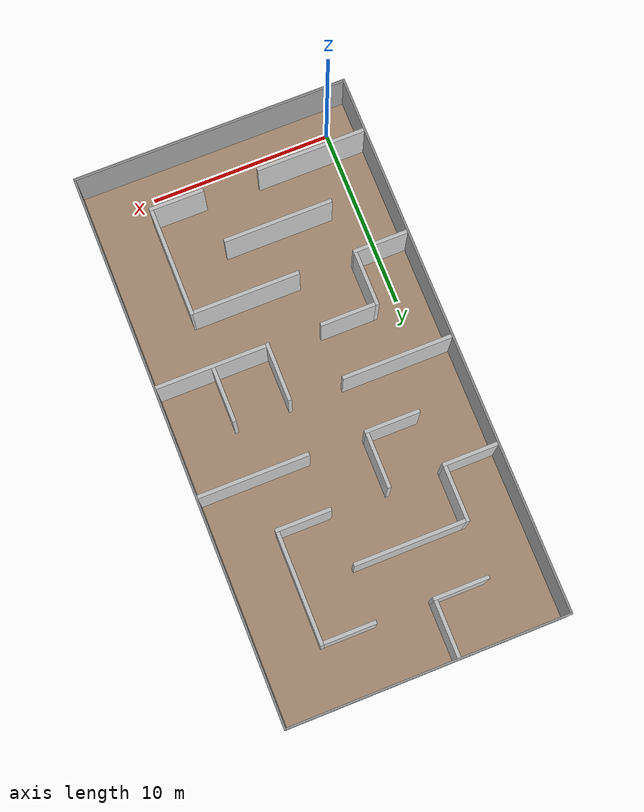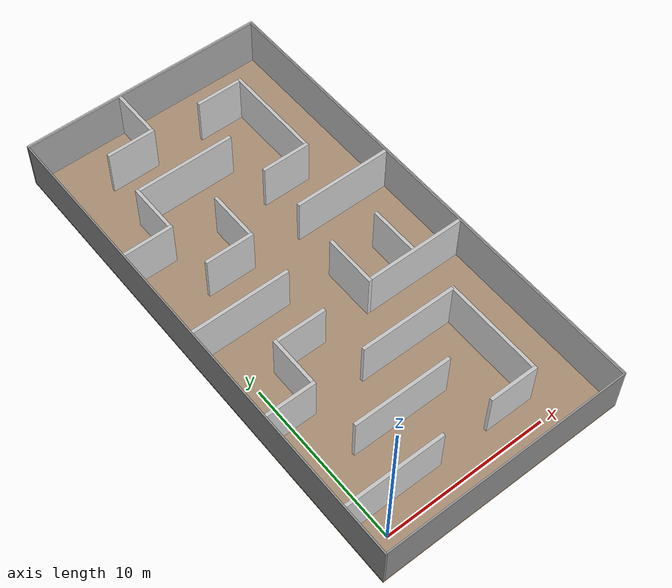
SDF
<?xml version="1.0" ?>
<sdf version="1.5">
  <world name="default">

    <include>
      <uri>model://sun</uri>
    </include>

    <physics name="default_physics" default="0" type="ode">
      <gravity>0 0 -9.8066</gravity>
      <ode>
        <solver>
          <type>quick</type>
          <iters>10</iters>
          <sor>1.3</sor>
          <use_dynamic_moi_rescaling>0</use_dynamic_moi_rescaling>
        </solver>
        <constraints>
          <cfm>0</cfm>
          <erp>0.2</erp>
          <contact_max_correcting_vel>100</contact_max_correcting_vel>
          <contact_surface_layer>0.001</contact_surface_layer>
        </constraints>
      </ode>
      <max_step_size>0.004</max_step_size>
      <real_time_factor>1</real_time_factor>
      <real_time_update_rate>250</real_time_update_rate>
      <magnetic_field>6.0e-6 2.3e-5 -4.2e-5</magnetic_field>
    </physics>

    <model name="box_1">
      <pose>6.05 -1.55 1.5  0 0 0</pose>
      <static>true</static>
      <link name="link">
        <collision name="collision">
          <geometry>
            <box>
              <size>15.1 0.10000000000000009 3.0 </size>
            </box>
          </geometry>
        </collision>
        <visual name="visual">
          <geometry>
            <box>
              <size>15.1 0.10000000000000009 3.0 </size>
            </box>
          </geometry>
          <material>
            <script>
              <name>Gazebo/Grey</name>
              <uri>file://media/materials/scripts/gazebo.material</uri>
            </script>
          </material>
        </visual>
      </link>
    </model>

    <model name="box_2">
      <pose>13.55 13.55 1.5  0 0 0</pose>
      <static>true</static>
      <link name="link">
        <collision name="collision">
          <geometry>
            <box>
              <size>0.09999999999999964 30.1 3.0 </size>
            </box>
          </geometry>
        </collision>
        <visual name="visual">
          <geometry>
            <box>
              <size>0.09999999999999964 30.1 3.0 </size>
            </box>
          </geometry>
          <material>
            <script>
              <name>Gazebo/Grey</name>
              <uri>file://media/materials/scripts/gazebo.material</uri>
            </script>
          </material>
        </visual>
      </link>
    </model>

    <model name="box_3">
      <pose>5.95 28.55 1.5  0 0 0</pose>
      <static>true</static>
      <link name="link">
        <collision name="collision">
          <geometry>
            <box>
              <size>15.1 0.10000000000000142 3.0 </size>
            </box>
          </geometry>
        </collision>
        <visual name="visual">
          <geometry>
            <box>
              <size>15.1 0.10000000000000142 3.0 </size>
            </box>
          </geometry>
          <material>
            <script>
              <name>Gazebo/Grey</name>
              <uri>file://media/materials/scripts/gazebo.material</uri>
            </script>
          </material>
        </visual>
      </link>
    </model>

    <model name="box_4">
      <pose>-1.55 13.45 1.5  0 0 0</pose>
      <static>true</static>
      <link name="link">
        <collision name="collision">
          <geometry>
            <box>
              <size>0.10000000000000009 30.1 3.0 </size>
            </box>
          </geometry>
        </collision>
        <visual name="visual">
          <geometry>
            <box>
              <size>0.10000000000000009 30.1 3.0 </size>
            </box>
          </geometry>
          <material>
            <script>
              <name>Gazebo/Grey</name>
              <uri>file://media/materials/scripts/gazebo.material</uri>
            </script>
          </material>
        </visual>
      </link>
    </model>

    <model name="box_5">
      <pose>6.0 13.5 -0.05  0 0 0</pose>
      <static>true</static>
      <link name="link">
        <collision name="collision">
          <geometry>
            <box>
              <size>15.2 30.200000000000003 0.1 </size>
            </box>
          </geometry>
        </collision>
        <visual name="visual">
          <geometry>
            <box>
              <size>15.2 30.200000000000003 0.1 </size>
            </box>
          </geometry>
          <material>
            <script>
              <name>Gazebo/WoodFloor</name>
              <uri>file://media/materials/scripts/gazebo.material</uri>
            </script>
          </material>
        </visual>
      </link>
    </model>

    <model name="box_6">
      <pose>6.0 13.5 3.05  0 0 0</pose>
      <static>true</static>
      <link name="link">
        <collision name="collision">
          <geometry>
            <box>
              <size>15.2 30.200000000000003 0.10000000000000009 </size>
            </box>
          </geometry>
        </collision>
        <visual name="visual">
          <geometry>
            <box>
              <size>15.2 30.200000000000003 0.10000000000000009 </size>
            </box>
          </geometry>
          <material>
            <script>
              <name>Gazebo/GreyTransparent</name>
              <uri>file://media/materials/scripts/gazebo.material</uri>
            </script>
          </material>
        </visual>
      </link>
    </model>

    <model name="box_7">
      <pose>1.5 1.4 1.5  0 0 0</pose>
      <static>true</static>
      <link name="link">
        <visual name="visual">
          <geometry>
            <box>
              <size>6.0 0.19999999999999996 3.0 </size>
            </box>
          </geometry>
          <material>
            <script>
              <name>Gazebo/White</name>
              <uri>file://media/materials/scripts/gazebo.material</uri>
            </script>
          </material>
        </visual>
      </link>
    </model>

    <model name="box_8">
      <pose>9.0 1.4 1.5  0 0 0</pose>
      <static>true</static>
      <link name="link">
        <visual name="visual">
          <geometry>
            <box>
              <size>3.0 0.19999999999999996 3.0 </size>
            </box>
          </geometry>
          <material>
            <script>
              <name>Gazebo/White</name>
              <uri>file://media/materials/scripts/gazebo.material</uri>
            </script>
          </material>
        </visual>
      </link>
    </model>

    <model name="box_9">
      <pose>10.4 4.5 1.5  0 0 0</pose>
      <static>true</static>
      <link name="link">
        <visual name="visual">
          <geometry>
            <box>
              <size>0.1999999999999993 6.0 3.0 </size>
            </box>
          </geometry>
          <material>
            <script>
              <name>Gazebo/White</name>
              <uri>file://media/materials/scripts/gazebo.material</uri>
            </script>
          </material>
        </visual>
      </link>
    </model>

    <model name="box_10">
      <pose>7.45 7.4 1.5  0 0 0</pose>
      <static>true</static>
      <link name="link">
        <visual name="visual">
          <geometry>
            <box>
              <size>5.9 0.20000000000000018 3.0 </size>
            </box>
          </geometry>
          <material>
            <script>
              <name>Gazebo/White</name>
              <uri>file://media/materials/scripts/gazebo.material</uri>
            </script>
          </material>
        </visual>
      </link>
    </model>

    <model name="box_11">
      <pose>4.5 4.4 1.5  0 0 0</pose>
      <static>true</static>
      <link name="link">
        <visual name="visual">
          <geometry>
            <box>
              <size>6.0 0.20000000000000018 3.0 </size>
            </box>
          </geometry>
          <material>
            <script>
              <name>Gazebo/White</name>
              <uri>file://media/materials/scripts/gazebo.material</uri>
            </script>
          </material>
        </visual>
      </link>
    </model>

    <model name="box_12">
      <pose>0.0 7.4 1.5  0 0 0</pose>
      <static>true</static>
      <link name="link">
        <visual name="visual">
          <geometry>
            <box>
              <size>3.0 0.20000000000000018 3.0 </size>
            </box>
          </geometry>
          <material>
            <script>
              <name>Gazebo/White</name>
              <uri>file://media/materials/scripts/gazebo.material</uri>
            </script>
          </material>
        </visual>
      </link>
    </model>

    <model name="box_13">
      <pose>1.4 9.0 1.5  0 0 0</pose>
      <static>true</static>
      <link name="link">
        <visual name="visual">
          <geometry>
            <box>
              <size>0.19999999999999996 3.0 3.0 </size>
            </box>
          </geometry>
          <material>
            <script>
              <name>Gazebo/White</name>
              <uri>file://media/materials/scripts/gazebo.material</uri>
            </script>
          </material>
        </visual>
      </link>
    </model>

    <model name="box_14">
      <pose>3.0 10.4 1.5  0 0 0</pose>
      <static>true</static>
      <link name="link">
        <visual name="visual">
          <geometry>
            <box>
              <size>3.0 0.1999999999999993 3.0 </size>
            </box>
          </geometry>
          <material>
            <script>
              <name>Gazebo/White</name>
              <uri>file://media/materials/scripts/gazebo.material</uri>
            </script>
          </material>
        </visual>
      </link>
    </model>

    <model name="box_15">
      <pose>10.5 10.4 1.5  0 0 0</pose>
      <static>true</static>
      <link name="link">
        <visual name="visual">
          <geometry>
            <box>
              <size>6.0 0.1999999999999993 3.0 </size>
            </box>
          </geometry>
          <material>
            <script>
              <name>Gazebo/White</name>
              <uri>file://media/materials/scripts/gazebo.material</uri>
            </script>
          </material>
        </visual>
      </link>
    </model>

    <model name="box_16">
      <pose>7.4 11.9 1.5  0 0 0</pose>
      <static>true</static>
      <link name="link">
        <visual name="visual">
          <geometry>
            <box>
              <size>0.20000000000000018 3.1999999999999993 3.0 </size>
            </box>
          </geometry>
          <material>
            <script>
              <name>Gazebo/White</name>
              <uri>file://media/materials/scripts/gazebo.material</uri>
            </script>
          </material>
        </visual>
      </link>
    </model>

    <model name="box_17">
      <pose>10.4 12.0 1.5  0 0 0</pose>
      <static>true</static>
      <link name="link">
        <visual name="visual">
          <geometry>
            <box>
              <size>0.1999999999999993 3.0 3.0 </size>
            </box>
          </geometry>
          <material>
            <script>
              <name>Gazebo/White</name>
              <uri>file://media/materials/scripts/gazebo.material</uri>
            </script>
          </material>
        </visual>
      </link>
    </model>

    <model name="box_18">
      <pose>1.5 13.4 1.5  0 0 0</pose>
      <static>true</static>
      <link name="link">
        <visual name="visual">
          <geometry>
            <box>
              <size>6.0 0.1999999999999993 3.0 </size>
            </box>
          </geometry>
          <material>
            <script>
              <name>Gazebo/White</name>
              <uri>file://media/materials/scripts/gazebo.material</uri>
            </script>
          </material>
        </visual>
      </link>
    </model>

    <model name="box_19">
      <pose>3.0 16.4 1.5  0 0 0</pose>
      <static>true</static>
      <link name="link">
        <visual name="visual">
          <geometry>
            <box>
              <size>3.0 0.1999999999999993 3.0 </size>
            </box>
          </geometry>
          <material>
            <script>
              <name>Gazebo/White</name>
              <uri>file://media/materials/scripts/gazebo.material</uri>
            </script>
          </material>
        </visual>
      </link>
    </model>

    <model name="box_20">
      <pose>4.4 18.0 1.5  0 0 0</pose>
      <static>true</static>
      <link name="link">
        <visual name="visual">
          <geometry>
            <box>
              <size>0.20000000000000018 3.0 3.0 </size>
            </box>
          </geometry>
          <material>
            <script>
              <name>Gazebo/White</name>
              <uri>file://media/materials/scripts/gazebo.material</uri>
            </script>
          </material>
        </visual>
      </link>
    </model>

    <model name="box_21">
      <pose>10.5 16.4 1.5  0 0 0</pose>
      <static>true</static>
      <link name="link">
        <visual name="visual">
          <geometry>
            <box>
              <size>6.0 0.1999999999999993 3.0 </size>
            </box>
          </geometry>
          <material>
            <script>
              <name>Gazebo/White</name>
              <uri>file://media/materials/scripts/gazebo.material</uri>
            </script>
          </material>
        </visual>
      </link>
    </model>

    <model name="box_22">
      <pose>0.0 19.4 1.5  0 0 0</pose>
      <static>true</static>
      <link name="link">
        <visual name="visual">
          <geometry>
            <box>
              <size>3.0 0.1999999999999993 3.0 </size>
            </box>
          </geometry>
          <material>
            <script>
              <name>Gazebo/White</name>
              <uri>file://media/materials/scripts/gazebo.material</uri>
            </script>
          </material>
        </visual>
      </link>
    </model>

    <model name="box_23">
      <pose>1.4 21.0 1.5  0 0 0</pose>
      <static>true</static>
      <link name="link">
        <visual name="visual">
          <geometry>
            <box>
              <size>0.19999999999999996 3.0 3.0 </size>
            </box>
          </geometry>
          <material>
            <script>
              <name>Gazebo/White</name>
              <uri>file://media/materials/scripts/gazebo.material</uri>
            </script>
          </material>
        </visual>
      </link>
    </model>

    <model name="box_24">
      <pose>4.5 22.4 1.5  0 0 0</pose>
      <static>true</static>
      <link name="link">
        <visual name="visual">
          <geometry>
            <box>
              <size>6.0 0.1999999999999993 3.0 </size>
            </box>
          </geometry>
          <material>
            <script>
              <name>Gazebo/White</name>
              <uri>file://media/materials/scripts/gazebo.material</uri>
            </script>
          </material>
        </visual>
      </link>
    </model>

    <model name="box_25">
      <pose>9.0 19.4 1.5  0 0 0</pose>
      <static>true</static>
      <link name="link">
        <visual name="visual">
          <geometry>
            <box>
              <size>3.0 0.1999999999999993 3.0 </size>
            </box>
          </geometry>
          <material>
            <script>
              <name>Gazebo/White</name>
              <uri>file://media/materials/scripts/gazebo.material</uri>
            </script>
          </material>
        </visual>
      </link>
    </model>

    <model name="box_26">
      <pose>10.4 22.5 1.5  0 0 0</pose>
      <static>true</static>
      <link name="link">
        <visual name="visual">
          <geometry>
            <box>
              <size>0.1999999999999993 6.0 3.0 </size>
            </box>
          </geometry>
          <material>
            <script>
              <name>Gazebo/White</name>
              <uri>file://media/materials/scripts/gazebo.material</uri>
            </script>
          </material>
        </visual>
      </link>
    </model>

    <model name="box_27">
      <pose>8.9 25.4 1.5  0 0 0</pose>
      <static>true</static>
      <link name="link">
        <visual name="visual">
          <geometry>
            <box>
              <size>2.8000000000000007 0.1999999999999993 3.0 </size>
            </box>
          </geometry>
          <material>
            <script>
              <name>Gazebo/White</name>
              <uri>file://media/materials/scripts/gazebo.material</uri>
            </script>
          </material>
        </visual>
      </link>
    </model>

    <model name="box_28">
      <pose>3.0 25.4 1.5  0 0 0</pose>
      <static>true</static>
      <link name="link">
        <visual name="visual">
          <geometry>
            <box>
              <size>3.0 0.1999999999999993 3.0 </size>
            </box>
          </geometry>
          <material>
            <script>
              <name>Gazebo/White</name>
              <uri>file://media/materials/scripts/gazebo.material</uri>
            </script>
          </material>
        </visual>
      </link>
    </model>

    <model name="box_29">
      <pose>4.4 27.0 1.5  0 0 0</pose>
      <static>true</static>
      <link name="link">
        <visual name="visual">
          <geometry>
            <box>
              <size>0.20000000000000018 3.0 3.0 </size>
            </box>
          </geometry>
          <material>
            <script>
              <name>Gazebo/White</name>
              <uri>file://media/materials/scripts/gazebo.material</uri>
            </script>
          </material>
        </visual>
      </link>
    </model>

    <gui fullscreen='0'>
      <camera name='user_camera'>
        <pose frame=''>5.87849 -4.00139 27.5266 0 1.31564 1.5722</pose>
        <view_controller>orbit</view_controller>
        <projection_type>perspective</projection_type>
      </camera>
    </gui>

  </world>
</sdf>
